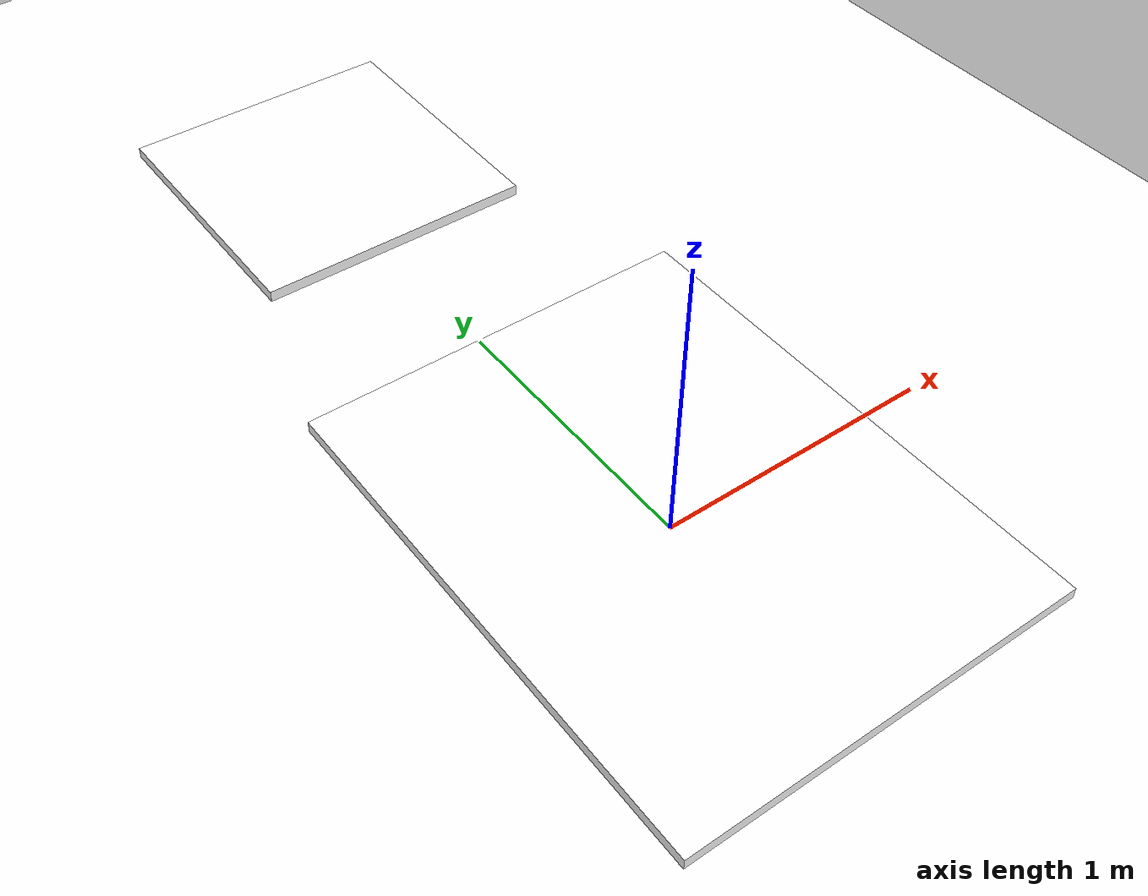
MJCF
<?xml version="1.0" ?>
<mujoco>
    <asset>
        <texture name="texplane" type="2d" builtin="checker" rgb1="1 1 1" rgb2="0 0 0" width="512" height="512"/>
        <texture name="texture_1" file="assets/4x4_1000-0.png"/>
        <material name="plane" texture="texplane" texrepeat="5 5" texuniform="true"/>
        <material name="text_1" texture="texture_1" />
    </asset>
    <worldbody>
        <light dir="0 0 -1" pos="0 0 10" diffuse="0.3 0.6 0.3"/>
        <camera name="main_camera" pos="0 -2 3.1" axisangle="1 0 0 45" fovy="60"/>
        <body name="checker" pos="0 0 0.1">
            <geom material="plane" size="0.7 0.9 0.02" rgba="1 1 1 1" type="box"/>
        </body>
        <body name="floor" pos="0 0 -0.1">
            <geom size="5.0 5.0 0.02" rgba="1 1 1 1" type="box"/>
        </body>
        <body name="checker_2" pos="0 2 0.1">
            <geom material="text_1" size="0.5 0.5 0.02" rgba="1 1 1 1" type="box"/>
        </body>
    </worldbody>
</mujoco>
